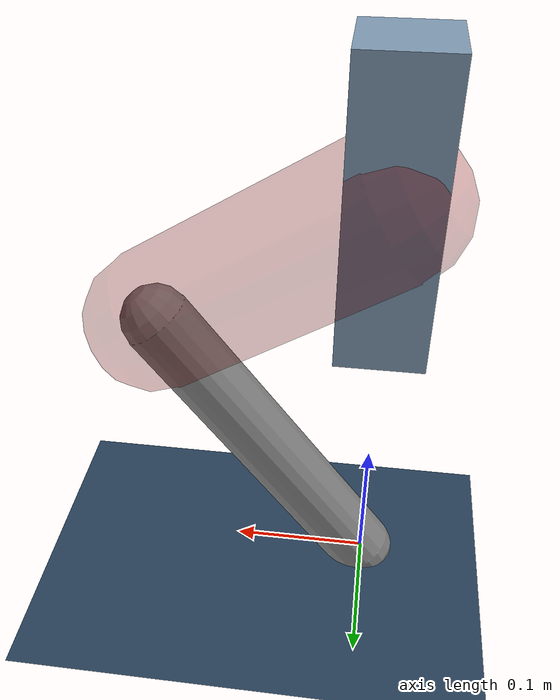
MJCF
<mujoco model="Hopper2D">
	<compiler inertiafromgeom="true" angle="radian" />
	<option timestep="0.001" integrator="implicit" cone="elliptic" solver="Newton" tolerance="1e-10" />

	<default>
		<geom contype="1" conaffinity="1" condim="3" friction="2 0.005 0.0001" solref="0.005 1" />
		<joint limited="true" damping="0.1" />
	</default>

	<asset>
		<texture name="skybox" type="skybox" builtin="gradient" rgb1=".4 .6 .8" rgb2="0 0 0" width="800" height="800" />
		<texture name="grid" type="2d" builtin="checker" rgb1=".1 .2 .3" rgb2=".2 .3 .4" width="300" height="300" mark="edge" markrgb=".2 .3 .4" />
		<material name="ground" texture="grid" texrepeat="1 1" texuniform="true" reflectance="0.1" />
		<material name="leg" rgba="0.5 0.6 0.7 1" />
	</asset>

	<worldbody>

		<geom name="floor" type="plane" size="5 5 0.25" material="ground" />

		<light directional="false" diffuse="0.8 0.8 0.8" specular="0.3 0.3 0.3" pos="0 0 2" dir="0 0 -1" />
		<light mode="targetbodycom" target="base" directional="false" diffuse="0.8 0.8 0.8" specular="0.3 0.3 0.3" pos="0 0 2" dir="0 0 -1" />

		<camera name="fixed" pos="0 -2 1" xyaxes="1 0 0 0 0 1" />
		<camera name="tracking" mode="trackcom" pos="0 -3 1" />

		<body name="root" pos="0 0 0.3013092787792633">
			<joint name="slide_x" type="slide" axis="1 0 0" range="-100 100" />
			<joint name="slide_z" type="slide" axis="0 0 1" range="0 10" />

			<body name="base" pos="0 0 0">
				<geom name="torso" type="box" size="0.03 0.03 0.1" mass="3.379" material="leg" />

				<body name="link1" pos="0 0 0" euler="0 0.5520716894265272 0">
					<joint type="hinge" axis="0 -1 0" pos="0 0 0" name="hinge1" limited="true" range="-3.14 3.14" stiffness="0" damping="0.1" />
					<geom name="thigh" type="capsule" fromto="0 0 0 0.1804170716813195 0 0" size="0.05" rgba="0.5 0 0 0.3" mass="0.6815009720351668" />

					<body name="link2" pos="0.1804170716813195 0 0" euler="0 1.6578686183145859 0">
						<joint type="hinge" axis="0 -1 0" pos="0 0 0" name="hinge2" limited="true" range="-3.14 3.14" stiffness="0" damping="0.1" />
						<geom name="shank" type="capsule" fromto="0 0 0 0.2575223233935091 0 0" size="0.025" mass="0.4487178587148073" />

					</body>
				</body>
			</body>
		</body>
	</worldbody>

	<actuator>
		<motor name="torque1" joint="hinge1" ctrlrange="-143.3993570097516 143.3993570097516" ctrllimited="true" gear="1" />
		<motor name="torque2" joint="hinge2" ctrlrange="-40.52050624453041 40.52050624453041" ctrllimited="true" gear="1" />
	</actuator>
</mujoco>
